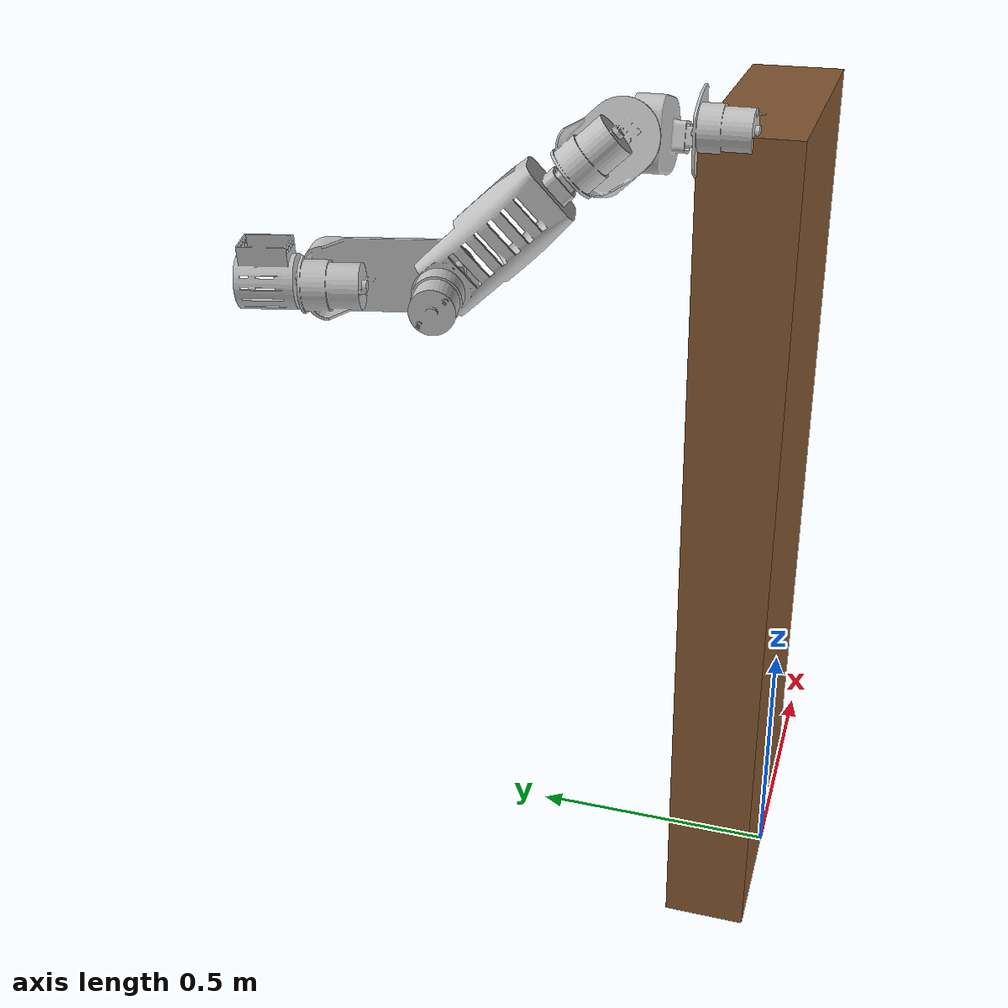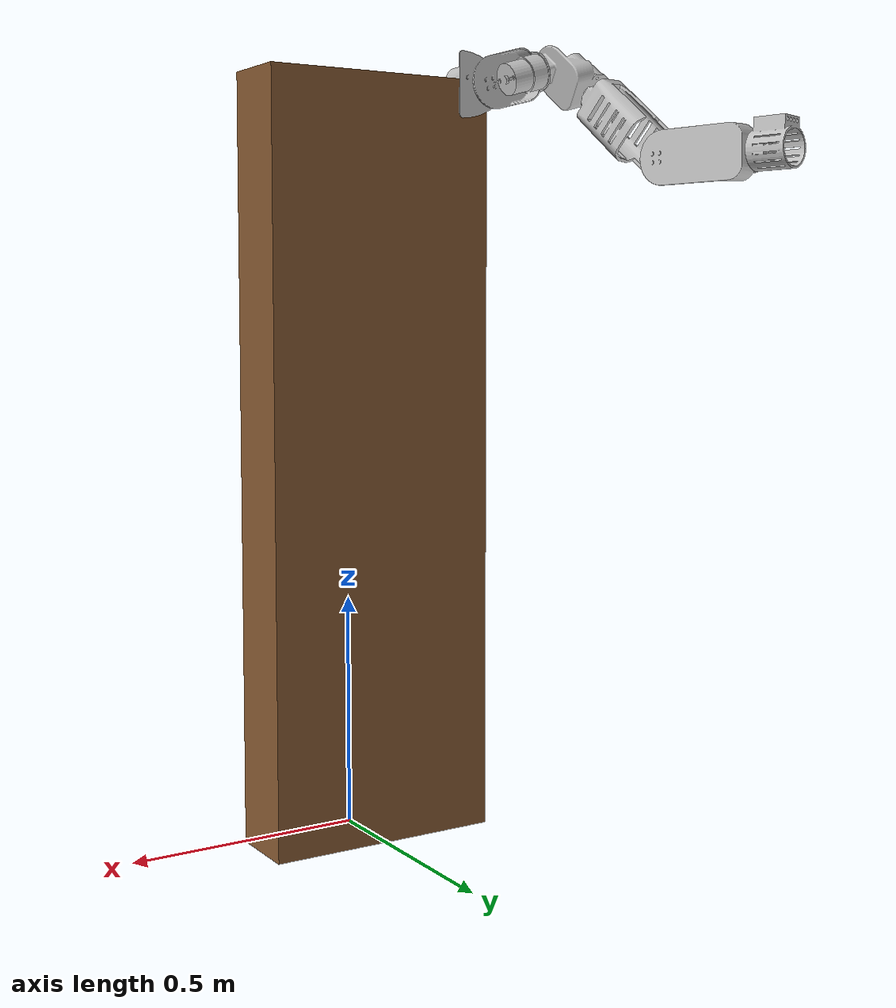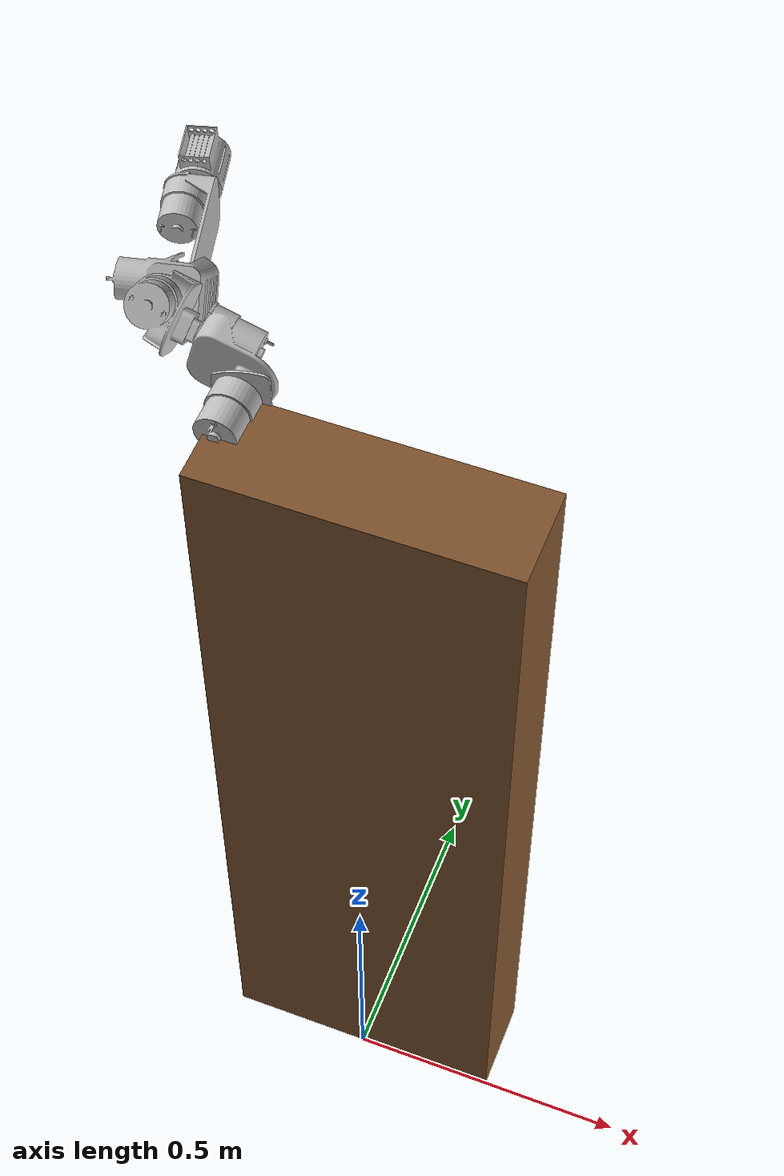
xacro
<?xml version="1.0"?>
<!-- Revolute-Revolute Manipulator -->
<robot name="mbot" xmlns:xacro="http://www.ros.org/wiki/xacro">

  <xacro:property name="width1" value="0.5" />   <!-- Beams are square in length and width -->
  <xacro:property name="width2" value="0.16" />   <!-- Beams are square in length and width -->
  <xacro:property name="height1" value="1.6" />   <!-- Link 1 -->
  <xacro:property name="height2" value="1" />   <!-- Link 2 -->
  <xacro:property name="height3" value="1" />   <!-- Link 3 -->
  <xacro:property name="axle_offset" value="0.05" /> <!-- Space between joint and end of beam -->
  <xacro:property name="damp" value="0.7" />    <!-- damping coefficient -->
	<xacro:include filename="$(find robotic_arm_ver1)/urdf/materials.xacro"/>
	<!-- Default Inertial -->
  <xacro:macro name="default_inertial" params="z_value i_value mass">
    <inertial>
      <origin xyz="0 0 ${z_value}" rpy="0 0 0"/>
      <mass value="${mass}" />
      <inertia ixx="${i_value}" ixy="0.0" ixz="0.0"
               iyy="${i_value}" iyz="0.0"
               izz="${i_value}" />
      </inertial>
  </xacro:macro>

	<xacro:include filename="$(find robotic_arm_ver1)/urdf/mbot_arm1.gazebo"/>

	<link name="world"/>

	<joint name="fixed_base" type="fixed">
		<parent link="world"/>
		<child link="base_link"/>
	</joint>

  <link name="base_link">
    <visual>
      <origin xyz="0 ${width2/2} ${height1/2}" rpy="0 0 0"/>
      <geometry>
				<box size="${width1} ${width2} ${height1}"/>
      </geometry>
      <material name="brown"/>
    </visual>

    <collision>
      <origin xyz="0 ${width2/2} ${height1/2}" rpy="0 0 0"/>
      <geometry>
				<box size="${width1} ${width2} ${height1}"/>
      </geometry>
    </collision>

		<xacro:default_inertial z_value="${height1/2}" i_value="1.0" mass="1" />
  </link>

	<joint name="fixed_shoulder" type="fixed">
		<parent link="base_link"/>
		<child link="shoulder_roll_link"/>
    <origin
      xyz="-${width1/2} ${width2} ${height1}"
      rpy="0.0 0.0 ${pi}" />
	</joint>

 <link
    name="shoulder_roll_link">
		<xacro:default_inertial z_value="0" i_value="1.0" mass="1" />
    <visual>
      <origin
        xyz="0 0 0"
        rpy="0 0 0" />
      <geometry>
        <mesh
          filename="package://robotic_arm_ver1/meshes/shoulder_roll_link.STL" />
      </geometry>
      <material
        name="">
        <color
          rgba="0.75294 0.75294 0.75294 1" />
      </material>
    </visual>
    <collision>
      <origin
        xyz="0 0 0"
        rpy="0 0 0" />
      <geometry>
        <mesh
          filename="package://robotic_arm_ver1/meshes/shoulder_roll_link.STL" />
      </geometry>
    </collision>
  </link>
  <link
    name="shoulder_pitch_link">
		<xacro:default_inertial z_value="0" i_value="1.0" mass="1" />
    <visual>
      <origin
        xyz="0 0 0"
        rpy="0 0 0" />
      <geometry>
        <mesh
          filename="package://robotic_arm_ver1/meshes/shoulder_pitch_link.STL" />
      </geometry>
      <material
        name="">
        <color
          rgba="0.75294 0.75294 0.75294 1" />
      </material>
    </visual>
    <collision>
      <origin
        xyz="0 0 0"
        rpy="0 0 0" />
      <geometry>
        <mesh
          filename="package://robotic_arm_ver1/meshes/shoulder_pitch_link.STL" />
      </geometry>
    </collision>
  </link>

  <joint
    name="shoulder_pitch_joint"
    type="revolute">
    <origin
      xyz="-0.01873 -0.0067376 -0.010833"
      rpy="1.5708 0.19956 -1.2384E-17" />
    <parent
      link="shoulder_roll_link" />
    <child
      link="shoulder_pitch_link" />
    <axis
      xyz="0 0 1" />
    <dynamics damping="${damp}"/>
    <limit effort="100.0" velocity="0.5" lower="-2.2" upper="0.94" />
  </joint>

  <link
    name="arm_control_link">
		<xacro:default_inertial z_value="0" i_value="1.0" mass="1" />
    <visual>
      <origin
        xyz="0 0 0"
        rpy="0 0 0" />
      <geometry>
        <mesh
          filename="package://robotic_arm_ver1/meshes/arm_control_link.STL" />
      </geometry>
      <material
        name="">
        <color
          rgba="0.75294 0.75294 0.75294 1" />
      </material>
    </visual>
    <collision>
      <origin
        xyz="0 0 0"
        rpy="0 0 0" />
      <geometry>
        <mesh
          filename="package://robotic_arm_ver1/meshes/arm_control_link.STL" />
      </geometry>
    </collision>
  </link>
  <joint
    name="arm_joint"
    type="revolute">
    <origin
      xyz="0.032276 0.016635 0.067"
      rpy="-0.46455 -0.22693 0.053898" />
    <parent
      link="shoulder_pitch_link" />
    <child
      link="arm_control_link" />
    <axis
      xyz="0.88889 0.45813 0" />
    <dynamics damping="${damp}"/>
    <limit effort="100.0" velocity="0.5" lower="-3.14" upper="3.14" />
  </joint>
  <link
    name="arm_roll_link">
		<xacro:default_inertial z_value="0" i_value="1.0" mass="1" />
    <visual>
      <origin
        xyz="0 0 0"
        rpy="0 0 0" />
      <geometry>
        <mesh
          filename="package://robotic_arm_ver1/meshes/arm_roll_link.STL" />
      </geometry>
      <material
        name="">
        <color
          rgba="0.75294 0.75294 0.75294 1" />
      </material>
    </visual>
    <collision>
      <origin
        xyz="0 0 0"
        rpy="0 0 0" />
      <geometry>
        <mesh
          filename="package://robotic_arm_ver1/meshes/arm_roll_link.STL" />
      </geometry>
    </collision>
  </link>
  <joint
    name="arm_roll_joint"
    type="revolute">
    <origin
      xyz="0.20611 -0.11794 0.062959"
      rpy="-2.6706 -0.46974 -2.3045" />
    <parent
      link="arm_control_link" />
    <child
      link="arm_roll_link" />
    <axis
      xyz="0.43684 -0.84758 0.30129" />
    <dynamics damping="${damp}"/>
    <limit effort="100.0" velocity="0.5" lower="-3.14" upper="3.14" />
  </joint>
  <link
    name="forearm_link">
		<xacro:default_inertial z_value="0" i_value="1.0" mass="1" />
    <visual>
      <origin
        xyz="0 0 0"
        rpy="0 0 0" />
      <geometry>
        <mesh
          filename="package://robotic_arm_ver1/meshes/forearm_link.STL" />
      </geometry>
      <material
        name="">
        <color
          rgba="0.75294 0.75294 0.75294 1" />
      </material>
    </visual>
    <collision>
      <origin
        xyz="0 0 0"
        rpy="0 0 0" />
      <geometry>
        <mesh
          filename="package://robotic_arm_ver1/meshes/forearm_link.STL" />
      </geometry>
    </collision>
  </link>
  <joint
    name="forearm_joint"
    type="revolute">
    <origin
      xyz="0.050616 -0.099519 0.030072"
      rpy="0.5494 0.26255 0.0025907" />
    <parent
      link="arm_roll_link" />
    <child
      link="forearm_link" />
    <axis
      xyz="-0.89903 -0.42261 0.11464" />
    <dynamics damping="${damp}"/>
    <limit effort="100.0" velocity="0.5" lower="-1.72" upper="2.24" />
  </joint>
  <link
    name="arm_link">
		<xacro:default_inertial z_value="0" i_value="1.0" mass="1" />
    <visual>
      <origin
        xyz="0 0 0"
        rpy="0 0 0" />
      <geometry>
        <mesh
          filename="package://robotic_arm_ver1/meshes/arm_link.STL" />
      </geometry>
      <material
        name="">
        <color
          rgba="0.75294 0.75294 0.75294 1" />
      </material>
    </visual>
    <collision>
      <origin
        xyz="0 0 0"
        rpy="0 0 0" />
      <geometry>
        <mesh
          filename="package://robotic_arm_ver1/meshes/arm_link.STL" />
      </geometry>
    </collision>
  </link>
  <joint
    name="hand_joint"
    type="revolute">
    <origin
      xyz="0.038253 -0.15785 0.034392"
      rpy="-2.2518 0.021565 -2.5082" />
    <parent
      link="forearm_link" />
    <child
      link="arm_link" />
    <axis
      xyz="0.1641 -0.75714 0.6323" />
    <dynamics damping="${damp}"/>
    <limit effort="100.0" velocity="0.5" lower="-3.14" upper="3.14" />
  </joint>

 	<transmission name="transmission1">
    <type>transmission_interface/SimpleTransmission</type>
    <joint name="shoulder_pitch_joint">
      <hardwareInterface>EffortJointInterface</hardwareInterface>
    </joint>
    <actuator name="motor1">
      <hardwareInterface>EffortJointInterface</hardwareInterface>
      <mechanicalReduction>1</mechanicalReduction>
    </actuator>
  </transmission>

 	<transmission name="transmission2">
    <type>transmission_interface/SimpleTransmission</type>
    <joint name="arm_joint">
      <hardwareInterface>EffortJointInterface</hardwareInterface>
    </joint>
    <actuator name="motor2">
      <hardwareInterface>EffortJointInterface</hardwareInterface>
      <mechanicalReduction>1</mechanicalReduction>
    </actuator>
  </transmission>

 	<transmission name="transmission3">
    <type>transmission_interface/SimpleTransmission</type>
    <joint name="arm_roll_joint">
      <hardwareInterface>EffortJointInterface</hardwareInterface>
    </joint>
    <actuator name="motor3">
      <hardwareInterface>EffortJointInterface</hardwareInterface>
      <mechanicalReduction>1</mechanicalReduction>
    </actuator>
  </transmission>

 	<transmission name="transmission4">
    <type>transmission_interface/SimpleTransmission</type>
    <joint name="forearm_joint">
      <hardwareInterface>EffortJointInterface</hardwareInterface>
    </joint>
    <actuator name="motor4">
      <hardwareInterface>EffortJointInterface</hardwareInterface>
      <mechanicalReduction>1</mechanicalReduction>
    </actuator>
  </transmission>

 	<transmission name="transmission5">
    <type>transmission_interface/SimpleTransmission</type>
    <joint name="hand_joint">
      <hardwareInterface>EffortJointInterface</hardwareInterface>
    </joint>
    <actuator name="motor5">
      <hardwareInterface>EffortJointInterface</hardwareInterface>
      <mechanicalReduction>1</mechanicalReduction>
    </actuator>
  </transmission>

</robot>
